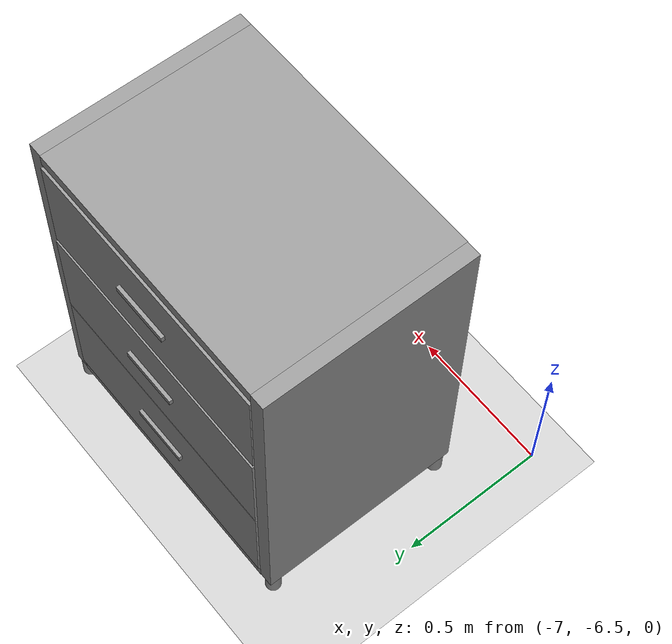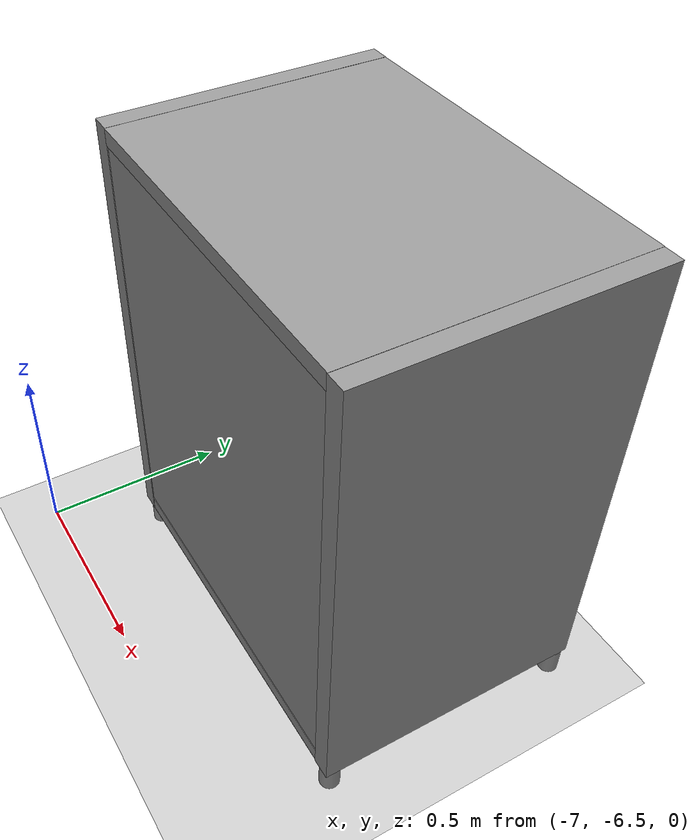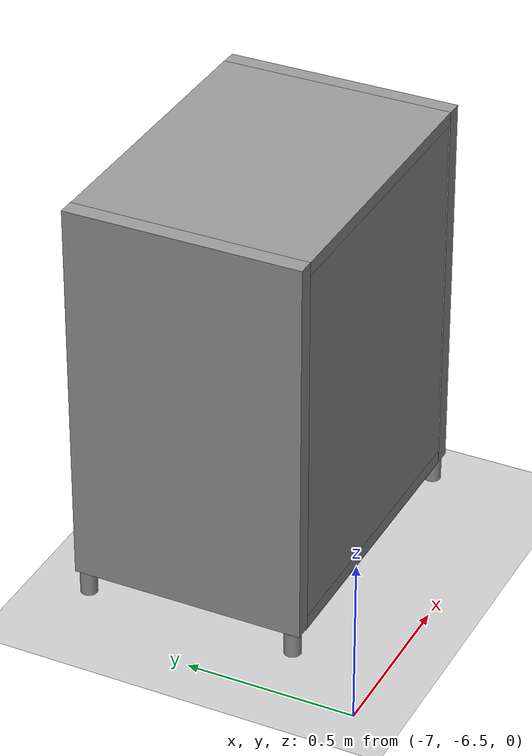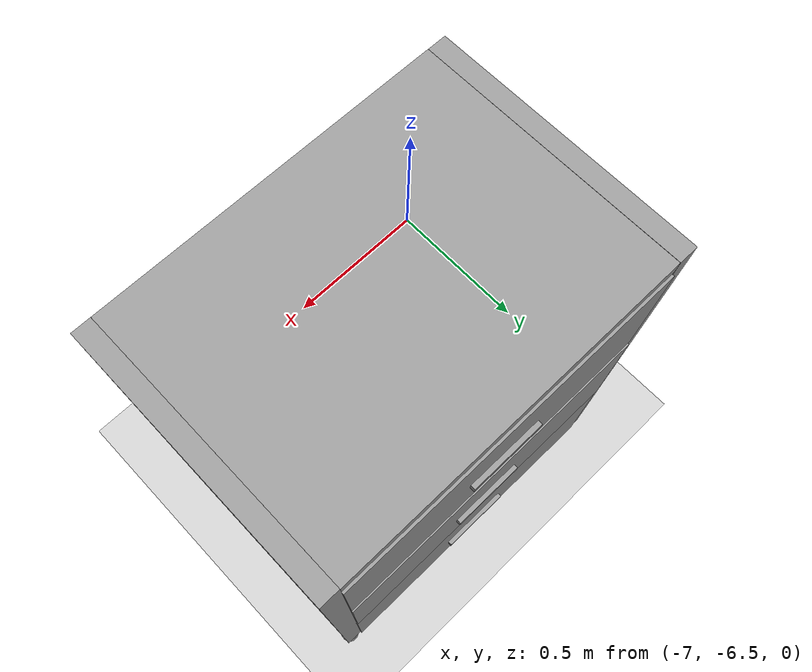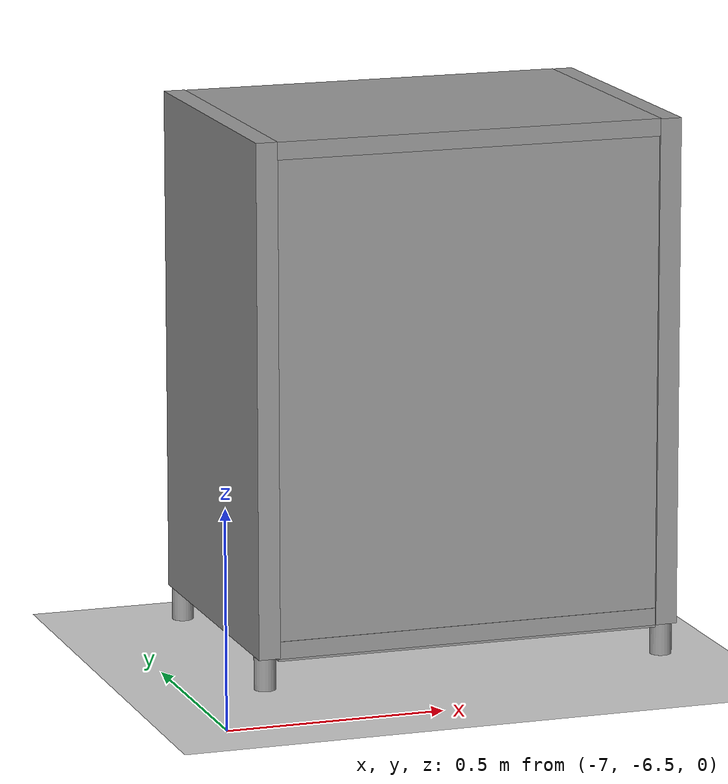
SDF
<sdf version="1.7">
 <world name="default">
  <model name="ground_plane">
   <static>1</static>
   <link name="link">
    <collision name="collision">
     <geometry><plane><normal>0 0 1</normal><size>100 100</size></plane></geometry>
     <surface>
      <contact><collide_bitmask>65535</collide_bitmask></contact>
      <friction><ode><mu>100</mu><mu2>50</mu2></ode></friction>
     </surface>
    </collision>
    <visual name="visual">
     <cast_shadows>0</cast_shadows>
     <geometry><plane><normal>0 0 1</normal><size>100 100</size></plane></geometry>
     <material>
      <script><uri>file://media/materials/scripts/gazebo.material</uri><name>Gazebo/Grey</name></script>
     </material>
    </visual>
   </link>
  </model>
  <model name="my_tall_drawer">
   <link name="link">
    <inertial>
     <mass>1</mass>
     <inertia>
      <ixx>0.166667</ixx>
      <ixy>0</ixy>
      <ixz>0</ixz>
      <iyy>0.166667</iyy>
      <iyz>0</iyz>
      <izz>0.166667</izz>
     </inertia>
    </inertial>
    <pose>-0.03613 -0.018536 -0.061909 0 -0 0</pose>
    <visual name="visual">
     <geometry><box><size>0.05 0.9 1.17</size></box></geometry>
     <material>
      <script><name>Gazebo/Grey</name><uri>file://media/materials/scripts/gazebo.material</uri></script>
      <shader type="pixel"><normal_map>__default__</normal_map></shader>
      <ambient>0.9 0.9 0.9 1</ambient>
      <diffuse>0.9 0.9 0.9 1</diffuse>
      <specular>0.01 0.01 0.01 1</specular>
      <emissive>0 0 0 1</emissive>
     </material>
     <pose>0 0 0.725 0 -0 0</pose>
    </visual>
    <collision name="collision">
     <pose>0 0 0.725 0 -0 0</pose>
     <geometry><box><size>0.05 0.9 1.17</size></box></geometry>
     <surface>
      <friction>
       <ode><mu>1</mu><mu2>1</mu2><fdir1>0 0 0</fdir1><slip1>0</slip1><slip2>0</slip2></ode>
       <torsional>
        <coefficient>1</coefficient>
        <patch_radius>0</patch_radius>
        <surface_radius>0</surface_radius>
        <use_patch_radius>1</use_patch_radius>
        <ode><slip>0</slip></ode>
       </torsional>
      </friction>
      <bounce><restitution_coefficient>0</restitution_coefficient><threshold>1e+06</threshold></bounce>
      <contact>
       <collide_without_contact>0</collide_without_contact>
       <collide_without_contact_bitmask>1</collide_without_contact_bitmask>
       <collide_bitmask>1</collide_bitmask>
       <ode>
        <soft_cfm>0</soft_cfm>
        <soft_erp>0.2</soft_erp>
        <kp>1e+13</kp>
        <kd>1</kd>
        <max_vel>0.01</max_vel>
        <min_depth>0</min_depth>
       </ode>
       <bullet>
        <split_impulse>1</split_impulse>
        <split_impulse_penetration_threshold>-0.01</split_impulse_penetration_threshold>
        <soft_cfm>0</soft_cfm>
        <soft_erp>0.2</soft_erp>
        <kp>1e+13</kp>
        <kd>1</kd>
       </bullet>
      </contact>
     </surface>
    </collision>
   </link>
   <link name="link_0">
    <inertial>
     <mass>1</mass>
     <inertia><ixx>0.145833</ixx><ixy>0</ixy><ixz>0</ixz><iyy>0.145833</iyy><iyz>0</iyz><izz>0.125</izz></inertia>
    </inertial>
    <pose>-0.037041 -0.491807 0.517038 0 -0 0</pose>
    <visual name="visual">
     <pose>0 0 -0.47 0 -0 0</pose>
     <geometry><cylinder><radius>0.025</radius><length>0.075</length></cylinder></geometry>
     <material>
      <lighting>1</lighting>
      <script><uri>file://media/materials/scripts/gazebo.material</uri><name>Gazebo/Grey</name></script>
      <shader type="pixel"><normal_map>__default__</normal_map></shader>
      <ambient>0.9 0.9 0.9 0</ambient>
      <diffuse>0.9 0.9 0.9 1</diffuse>
      <specular>0.01 0.01 0.01 1</specular>
      <emissive>0 0 0 1</emissive>
     </material>
    </visual>
    <collision name="collision">
     <pose>0 0 -0.47 0 -0 0</pose>
     <geometry><cylinder><radius>0.025</radius><length>0.075</length></cylinder></geometry>
     <surface>
      <friction>
       <ode><mu>1</mu><mu2>1</mu2><fdir1>0 0 0</fdir1><slip1>0</slip1><slip2>0</slip2></ode>
       <torsional>
        <coefficient>1</coefficient>
        <patch_radius>0</patch_radius>
        <surface_radius>0</surface_radius>
        <use_patch_radius>1</use_patch_radius>
        <ode><slip>0</slip></ode>
       </torsional>
      </friction>
      <bounce><restitution_coefficient>0</restitution_coefficient><threshold>1e+06</threshold></bounce>
      <contact>
       <collide_without_contact>0</collide_without_contact>
       <collide_without_contact_bitmask>1</collide_without_contact_bitmask>
       <collide_bitmask>1</collide_bitmask>
       <ode>
        <soft_cfm>0</soft_cfm>
        <soft_erp>0.2</soft_erp>
        <kp>1e+13</kp>
        <kd>1</kd>
        <max_vel>0.01</max_vel>
        <min_depth>0</min_depth>
       </ode>
       <bullet>
        <split_impulse>1</split_impulse>
        <split_impulse_penetration_threshold>-0.01</split_impulse_penetration_threshold>
        <soft_cfm>0</soft_cfm>
        <soft_erp>0.2</soft_erp>
        <kp>1e+13</kp>
        <kd>1</kd>
       </bullet>
      </contact>
     </surface>
    </collision>
   </link>
   <link name="link_0_clone">
    <inertial>
     <mass>1</mass>
     <inertia>
      <ixx>0.166667</ixx>
      <ixy>0</ixy>
      <ixz>0</ixz>
      <iyy>0.166667</iyy>
      <iyz>0</iyz>
      <izz>0.166667</izz>
     </inertia>
    </inertial>
    <pose>0.649567 -0.03449 1.03588 0 -0 0</pose>
    <gravity>0</gravity>
    <visual name="visual">
     <geometry><box><size>0.012 0.2 0.02</size></box></geometry>
     <material>
      <lighting>1</lighting>
      <script><uri>file://media/materials/scripts/gazebo.material</uri><name>Gazebo/Grey</name></script>
      <shader type="pixel"><normal_map>__default__</normal_map></shader>
      <ambient>0.2 0.2 0.2 0</ambient>
      <diffuse>0.2 0.2 0.2 1</diffuse>
      <specular>0.01 0.01 0.01 1</specular>
      <emissive>0 0 0 1</emissive>
     </material>
    </visual>
    <collision name="collision">
     <geometry><box><size>0.012 0.2 0.02</size></box></geometry>
     <surface>
      <friction>
       <ode><mu>1</mu><mu2>1</mu2><fdir1>0 0 0</fdir1><slip1>0</slip1><slip2>0</slip2></ode>
       <torsional>
        <coefficient>1</coefficient>
        <patch_radius>0</patch_radius>
        <surface_radius>0</surface_radius>
        <use_patch_radius>1</use_patch_radius>
        <ode><slip>0</slip></ode>
       </torsional>
      </friction>
      <bounce><restitution_coefficient>0</restitution_coefficient><threshold>1e+06</threshold></bounce>
      <contact>
       <collide_without_contact>0</collide_without_contact>
       <collide_without_contact_bitmask>1</collide_without_contact_bitmask>
       <collide_bitmask>1</collide_bitmask>
       <ode>
        <soft_cfm>0</soft_cfm>
        <soft_erp>0.2</soft_erp>
        <kp>1e+13</kp>
        <kd>1</kd>
        <max_vel>0.01</max_vel>
        <min_depth>0</min_depth>
       </ode>
       <bullet>
        <split_impulse>1</split_impulse>
        <split_impulse_penetration_threshold>-0.01</split_impulse_penetration_threshold>
        <soft_cfm>0</soft_cfm>
        <soft_erp>0.2</soft_erp>
        <kp>1e+13</kp>
        <kd>1</kd>
       </bullet>
      </contact>
     </surface>
    </collision>
   </link>
   <link name="link_0_clone_0">
    <inertial>
     <mass>1</mass>
     <inertia><ixx>0.145833</ixx><ixy>0</ixy><ixz>0</ixz><iyy>0.145833</iyy><iyz>0</iyz><izz>0.125</izz></inertia>
    </inertial>
    <pose>0.611334 -0.496528 0.517038 0 -0 0</pose>
    <visual name="visual">
     <pose>0 0 -0.47 0 -0 0</pose>
     <geometry><cylinder><radius>0.025</radius><length>0.075</length></cylinder></geometry>
     <material>
      <lighting>1</lighting>
      <script><uri>file://media/materials/scripts/gazebo.material</uri><name>Gazebo/Grey</name></script>
      <shader type="pixel"><normal_map>__default__</normal_map></shader>
      <ambient>0.9 0.9 0.9 0</ambient>
      <diffuse>0.9 0.9 0.9 1</diffuse>
      <specular>0.01 0.01 0.01 1</specular>
      <emissive>0 0 0 1</emissive>
     </material>
    </visual>
    <collision name="collision">
     <pose>0 0 -0.47 0 -0 0</pose>
     <geometry><cylinder><radius>0.025</radius><length>0.075</length></cylinder></geometry>
     <surface>
      <friction>
       <ode><mu>1</mu><mu2>1</mu2><fdir1>0 0 0</fdir1><slip1>0</slip1><slip2>0</slip2></ode>
       <torsional>
        <coefficient>1</coefficient>
        <patch_radius>0</patch_radius>
        <surface_radius>0</surface_radius>
        <use_patch_radius>1</use_patch_radius>
        <ode><slip>0</slip></ode>
       </torsional>
      </friction>
      <bounce><restitution_coefficient>0</restitution_coefficient><threshold>1e+06</threshold></bounce>
      <contact>
       <collide_without_contact>0</collide_without_contact>
       <collide_without_contact_bitmask>1</collide_without_contact_bitmask>
       <collide_bitmask>1</collide_bitmask>
       <ode>
        <soft_cfm>0</soft_cfm>
        <soft_erp>0.2</soft_erp>
        <kp>1e+13</kp>
        <kd>1</kd>
        <max_vel>0.01</max_vel>
        <min_depth>0</min_depth>
       </ode>
       <bullet>
        <split_impulse>1</split_impulse>
        <split_impulse_penetration_threshold>-0.01</split_impulse_penetration_threshold>
        <soft_cfm>0</soft_cfm>
        <soft_erp>0.2</soft_erp>
        <kp>1e+13</kp>
        <kd>1</kd>
       </bullet>
      </contact>
     </surface>
    </collision>
   </link>
   <link name="link_0_clone_1">
    <inertial>
     <mass>1</mass>
     <inertia><ixx>0.145833</ixx><ixy>0</ixy><ixz>0</ixz><iyy>0.145833</iyy><iyz>0</iyz><izz>0.125</izz></inertia>
    </inertial>
    <pose>-0.03182 0.454415 0.517038 0 -0 0</pose>
    <visual name="visual">
     <pose>0 0 -0.47 0 -0 0</pose>
     <geometry><cylinder><radius>0.025</radius><length>0.075</length></cylinder></geometry>
     <material>
      <lighting>1</lighting>
      <script><uri>file://media/materials/scripts/gazebo.material</uri><name>Gazebo/Grey</name></script>
      <shader type="pixel"><normal_map>__default__</normal_map></shader>
      <ambient>0.9 0.9 0.9 0</ambient>
      <diffuse>0.9 0.9 0.9 1</diffuse>
      <specular>0.01 0.01 0.01 1</specular>
      <emissive>0 0 0 1</emissive>
     </material>
    </visual>
    <collision name="collision">
     <pose>0 0 -0.47 0 -0 0</pose>
     <geometry><cylinder><radius>0.025</radius><length>0.075</length></cylinder></geometry>
     <surface>
      <friction>
       <ode><mu>1</mu><mu2>1</mu2><fdir1>0 0 0</fdir1><slip1>0</slip1><slip2>0</slip2></ode>
       <torsional>
        <coefficient>1</coefficient>
        <patch_radius>0</patch_radius>
        <surface_radius>0</surface_radius>
        <use_patch_radius>1</use_patch_radius>
        <ode><slip>0</slip></ode>
       </torsional>
      </friction>
      <bounce><restitution_coefficient>0</restitution_coefficient><threshold>1e+06</threshold></bounce>
      <contact>
       <collide_without_contact>0</collide_without_contact>
       <collide_without_contact_bitmask>1</collide_without_contact_bitmask>
       <collide_bitmask>1</collide_bitmask>
       <ode>
        <soft_cfm>0</soft_cfm>
        <soft_erp>0.2</soft_erp>
        <kp>1e+13</kp>
        <kd>1</kd>
        <max_vel>0.01</max_vel>
        <min_depth>0</min_depth>
       </ode>
       <bullet>
        <split_impulse>1</split_impulse>
        <split_impulse_penetration_threshold>-0.01</split_impulse_penetration_threshold>
        <soft_cfm>0</soft_cfm>
        <soft_erp>0.2</soft_erp>
        <kp>1e+13</kp>
        <kd>1</kd>
       </bullet>
      </contact>
     </surface>
    </collision>
   </link>
   <link name="link_0_clone_2">
    <inertial>
     <mass>1</mass>
     <inertia><ixx>0.145833</ixx><ixy>0</ixy><ixz>0</ixz><iyy>0.145833</iyy><iyz>0</iyz><izz>0.125</izz></inertia>
    </inertial>
    <pose>0.607914 0.452464 0.517038 0 -0 0</pose>
    <visual name="visual">
     <pose>0 0 -0.47 0 -0 0</pose>
     <geometry><cylinder><radius>0.025</radius><length>0.075</length></cylinder></geometry>
     <material>
      <lighting>1</lighting>
      <script><uri>file://media/materials/scripts/gazebo.material</uri><name>Gazebo/Grey</name></script>
      <shader type="pixel"><normal_map>__default__</normal_map></shader>
      <ambient>0.9 0.9 0.9 0</ambient>
      <diffuse>0.9 0.9 0.9 1</diffuse>
      <specular>0.01 0.01 0.01 1</specular>
      <emissive>0 0 0 1</emissive>
     </material>
    </visual>
    <collision name="collision">
     <pose>0 0 -0.47 0 -0 0</pose>
     <geometry><cylinder><radius>0.025</radius><length>0.075</length></cylinder></geometry>
     <surface>
      <friction>
       <ode><mu>1</mu><mu2>1</mu2><fdir1>0 0 0</fdir1><slip1>0</slip1><slip2>0</slip2></ode>
       <torsional>
        <coefficient>1</coefficient>
        <patch_radius>0</patch_radius>
        <surface_radius>0</surface_radius>
        <use_patch_radius>1</use_patch_radius>
        <ode><slip>0</slip></ode>
       </torsional>
      </friction>
      <bounce><restitution_coefficient>0</restitution_coefficient><threshold>1e+06</threshold></bounce>
      <contact>
       <collide_without_contact>0</collide_without_contact>
       <collide_without_contact_bitmask>1</collide_without_contact_bitmask>
       <collide_bitmask>1</collide_bitmask>
       <ode>
        <soft_cfm>0</soft_cfm>
        <soft_erp>0.2</soft_erp>
        <kp>1e+13</kp>
        <kd>1</kd>
        <max_vel>0.01</max_vel>
        <min_depth>0</min_depth>
       </ode>
       <bullet>
        <split_impulse>1</split_impulse>
        <split_impulse_penetration_threshold>-0.01</split_impulse_penetration_threshold>
        <soft_cfm>0</soft_cfm>
        <soft_erp>0.2</soft_erp>
        <kp>1e+13</kp>
        <kd>1</kd>
       </bullet>
      </contact>
     </surface>
    </collision>
   </link>
   <link name="link_0_clone_clone">
    <inertial>
     <mass>1</mass>
     <inertia>
      <ixx>0.166667</ixx>
      <ixy>0</ixy>
      <ixz>0</ixz>
      <iyy>0.166667</iyy>
      <iyz>0</iyz>
      <izz>0.166667</izz>
     </inertia>
    </inertial>
    <pose>0.648574 -0.032127 0.308738 0 -0 0</pose>
    <gravity>0</gravity>
    <visual name="visual">
     <geometry><box><size>0.012 0.2 0.02</size></box></geometry>
     <material>
      <lighting>1</lighting>
      <script><uri>file://media/materials/scripts/gazebo.material</uri><name>Gazebo/Grey</name></script>
      <shader type="pixel"><normal_map>__default__</normal_map></shader>
      <ambient>0.2 0.2 0.2 0</ambient>
      <diffuse>0.2 0.2 0.2 1</diffuse>
      <specular>0.01 0.01 0.01 1</specular>
      <emissive>0 0 0 1</emissive>
     </material>
    </visual>
    <collision name="collision">
     <geometry><box><size>0.012 0.2 0.02</size></box></geometry>
     <surface>
      <friction>
       <ode><mu>1</mu><mu2>1</mu2><fdir1>0 0 0</fdir1><slip1>0</slip1><slip2>0</slip2></ode>
       <torsional>
        <coefficient>1</coefficient>
        <patch_radius>0</patch_radius>
        <surface_radius>0</surface_radius>
        <use_patch_radius>1</use_patch_radius>
        <ode><slip>0</slip></ode>
       </torsional>
      </friction>
      <bounce><restitution_coefficient>0</restitution_coefficient><threshold>1e+06</threshold></bounce>
      <contact>
       <collide_without_contact>0</collide_without_contact>
       <collide_without_contact_bitmask>1</collide_without_contact_bitmask>
       <collide_bitmask>1</collide_bitmask>
       <ode>
        <soft_cfm>0</soft_cfm>
        <soft_erp>0.2</soft_erp>
        <kp>1e+13</kp>
        <kd>1</kd>
        <max_vel>0.01</max_vel>
        <min_depth>0</min_depth>
       </ode>
       <bullet>
        <split_impulse>1</split_impulse>
        <split_impulse_penetration_threshold>-0.01</split_impulse_penetration_threshold>
        <soft_cfm>0</soft_cfm>
        <soft_erp>0.2</soft_erp>
        <kp>1e+13</kp>
        <kd>1</kd>
       </bullet>
      </contact>
     </surface>
    </collision>
   </link>
   <link name="link_0_clone_clone_0">
    <inertial>
     <mass>1</mass>
     <inertia>
      <ixx>0.166667</ixx>
      <ixy>0</ixy>
      <ixz>0</ixz>
      <iyy>0.166667</iyy>
      <iyz>0</iyz>
      <izz>0.166667</izz>
     </inertia>
    </inertial>
    <pose>0.650881 -0.037424 0.670231 0 -0 0</pose>
    <gravity>0</gravity>
    <visual name="visual">
     <geometry><box><size>0.012 0.2 0.02</size></box></geometry>
     <material>
      <lighting>1</lighting>
      <script><uri>file://media/materials/scripts/gazebo.material</uri><name>Gazebo/Grey</name></script>
      <shader type="pixel"><normal_map>__default__</normal_map></shader>
      <ambient>0.2 0.2 0.2 0</ambient>
      <diffuse>0.2 0.2 0.2 1</diffuse>
      <specular>0.01 0.01 0.01 1</specular>
      <emissive>0 0 0 1</emissive>
     </material>
    </visual>
    <collision name="collision">
     <geometry><box><size>0.012 0.2 0.02</size></box></geometry>
     <surface>
      <friction>
       <ode><mu>1</mu><mu2>1</mu2><fdir1>0 0 0</fdir1><slip1>0</slip1><slip2>0</slip2></ode>
       <torsional>
        <coefficient>1</coefficient>
        <patch_radius>0</patch_radius>
        <surface_radius>0</surface_radius>
        <use_patch_radius>1</use_patch_radius>
        <ode><slip>0</slip></ode>
       </torsional>
      </friction>
      <bounce><restitution_coefficient>0</restitution_coefficient><threshold>1e+06</threshold></bounce>
      <contact>
       <collide_without_contact>0</collide_without_contact>
       <collide_without_contact_bitmask>1</collide_without_contact_bitmask>
       <collide_bitmask>1</collide_bitmask>
       <ode>
        <soft_cfm>0</soft_cfm>
        <soft_erp>0.2</soft_erp>
        <kp>1e+13</kp>
        <kd>1</kd>
        <max_vel>0.01</max_vel>
        <min_depth>0</min_depth>
       </ode>
       <bullet>
        <split_impulse>1</split_impulse>
        <split_impulse_penetration_threshold>-0.01</split_impulse_penetration_threshold>
        <soft_cfm>0</soft_cfm>
        <soft_erp>0.2</soft_erp>
        <kp>1e+13</kp>
        <kd>1</kd>
       </bullet>
      </contact>
     </surface>
    </collision>
   </link>
   <link name="link_clone">
    <inertial>
     <mass>1</mass>
     <inertia>
      <ixx>0.166667</ixx>
      <ixy>0</ixy>
      <ixz>0</ixz>
      <iyy>0.166667</iyy>
      <iyz>0</iyz>
      <izz>0.166667</izz>
     </inertia>
    </inertial>
    <pose>0.28891 -0.018651 -1.19613 1.1e-05 -0.001065 2e-06</pose>
    <visual name="visual">
     <geometry><box><size>0.7 0.9 0.04</size></box></geometry>
     <material>
      <script><name>Gazebo/Grey</name><uri>file://media/materials/scripts/gazebo.material</uri></script>
      <shader type="pixel"><normal_map>__default__</normal_map></shader>
      <ambient>0.9 0.9 0.9 1</ambient>
      <diffuse>0.9 0.9 0.9 1</diffuse>
      <specular>0.01 0.01 0.01 1</specular>
      <emissive>0 0 0 1</emissive>
     </material>
     <pose>0 0 1.3 0 -0 0</pose>
    </visual>
    <collision name="collision">
     <pose>0 0 1.3 0 -0 0</pose>
     <geometry><box><size>0.7 0.9 0.04</size></box></geometry>
     <surface>
      <friction>
       <ode><mu>1</mu><mu2>1</mu2><fdir1>0 0 0</fdir1><slip1>0</slip1><slip2>0</slip2></ode>
       <torsional>
        <coefficient>1</coefficient>
        <patch_radius>0</patch_radius>
        <surface_radius>0</surface_radius>
        <use_patch_radius>1</use_patch_radius>
        <ode><slip>0</slip></ode>
       </torsional>
      </friction>
      <bounce><restitution_coefficient>0</restitution_coefficient><threshold>1e+06</threshold></bounce>
      <contact>
       <collide_without_contact>0</collide_without_contact>
       <collide_without_contact_bitmask>1</collide_without_contact_bitmask>
       <collide_bitmask>1</collide_bitmask>
       <ode>
        <soft_cfm>0</soft_cfm>
        <soft_erp>0.2</soft_erp>
        <kp>1e+13</kp>
        <kd>1</kd>
        <max_vel>0.01</max_vel>
        <min_depth>0</min_depth>
       </ode>
       <bullet>
        <split_impulse>1</split_impulse>
        <split_impulse_penetration_threshold>-0.01</split_impulse_penetration_threshold>
        <soft_cfm>0</soft_cfm>
        <soft_erp>0.2</soft_erp>
        <kp>1e+13</kp>
        <kd>1</kd>
       </bullet>
      </contact>
     </surface>
    </collision>
   </link>
   <link name="link_clone_0">
    <inertial>
     <mass>1</mass>
     <inertia>
      <ixx>0.166667</ixx>
      <ixy>0</ixy>
      <ixz>0</ixz>
      <iyy>0.166667</iyy>
      <iyz>0</iyz>
      <izz>0.166667</izz>
     </inertia>
    </inertial>
    <pose>0.285628 -0.49449 -0.040786 0 -0 0</pose>
    <visual name="visual">
     <geometry><box><size>0.05 0.7 1.17</size></box></geometry>
     <material>
      <script><name>Gazebo/Grey</name><uri>file://media/materials/scripts/gazebo.material</uri></script>
      <shader type="pixel"><normal_map>__default__</normal_map></shader>
      <ambient>0.9 0.9 0.9 1</ambient>
      <diffuse>0.9 0.9 0.9 1</diffuse>
      <specular>0.01 0.01 0.01 1</specular>
      <emissive>0 0 0 1</emissive>
     </material>
     <pose>0 0 0.71 0 -0 1.5707</pose>
    </visual>
    <collision name="collision">
     <pose>0 0 0.71 0 -0 1.5707</pose>
     <geometry><box><size>0.05 0.7 1.17</size></box></geometry>
     <surface>
      <friction>
       <ode><mu>1</mu><mu2>1</mu2><fdir1>0 0 0</fdir1><slip1>0</slip1><slip2>0</slip2></ode>
       <torsional>
        <coefficient>1</coefficient>
        <patch_radius>0</patch_radius>
        <surface_radius>0</surface_radius>
        <use_patch_radius>1</use_patch_radius>
        <ode><slip>0</slip></ode>
       </torsional>
      </friction>
      <bounce><restitution_coefficient>0</restitution_coefficient><threshold>1e+06</threshold></bounce>
      <contact>
       <collide_without_contact>0</collide_without_contact>
       <collide_without_contact_bitmask>1</collide_without_contact_bitmask>
       <collide_bitmask>1</collide_bitmask>
       <ode>
        <soft_cfm>0</soft_cfm>
        <soft_erp>0.2</soft_erp>
        <kp>1e+13</kp>
        <kd>1</kd>
        <max_vel>0.01</max_vel>
        <min_depth>0</min_depth>
       </ode>
       <bullet>
        <split_impulse>1</split_impulse>
        <split_impulse_penetration_threshold>-0.01</split_impulse_penetration_threshold>
        <soft_cfm>0</soft_cfm>
        <soft_erp>0.2</soft_erp>
        <kp>1e+13</kp>
        <kd>1</kd>
       </bullet>
      </contact>
     </surface>
    </collision>
   </link>
   <link name="link_clone_0_clone">
    <inertial>
     <mass>1</mass>
     <inertia>
      <ixx>0.166667</ixx>
      <ixy>0</ixy>
      <ixz>0</ixz>
      <iyy>0.166667</iyy>
      <iyz>0</iyz>
      <izz>0.166667</izz>
     </inertia>
    </inertial>
    <pose>0.286617 0.453061 -0.03976 0 -0 0</pose>
    <visual name="visual">
     <geometry><box><size>0.05 0.7 1.17</size></box></geometry>
     <material>
      <script><name>Gazebo/Grey</name><uri>file://media/materials/scripts/gazebo.material</uri></script>
      <shader type="pixel"><normal_map>__default__</normal_map></shader>
      <ambient>0.9 0.9 0.9 1</ambient>
      <diffuse>0.9 0.9 0.9 1</diffuse>
      <specular>0.01 0.01 0.01 1</specular>
      <emissive>0 0 0 1</emissive>
     </material>
     <pose>0 0 0.71 0 -0 1.5707</pose>
    </visual>
    <collision name="collision">
     <pose>0 0 0.71 0 -0 1.5707</pose>
     <geometry><box><size>0.05 0.7 1.17</size></box></geometry>
     <surface>
      <friction>
       <ode><mu>1</mu><mu2>1</mu2><fdir1>0 0 0</fdir1><slip1>0</slip1><slip2>0</slip2></ode>
       <torsional>
        <coefficient>1</coefficient>
        <patch_radius>0</patch_radius>
        <surface_radius>0</surface_radius>
        <use_patch_radius>1</use_patch_radius>
        <ode><slip>0</slip></ode>
       </torsional>
      </friction>
      <bounce><restitution_coefficient>0</restitution_coefficient><threshold>1e+06</threshold></bounce>
      <contact>
       <collide_without_contact>0</collide_without_contact>
       <collide_without_contact_bitmask>1</collide_without_contact_bitmask>
       <collide_bitmask>1</collide_bitmask>
       <ode>
        <soft_cfm>0</soft_cfm>
        <soft_erp>0.2</soft_erp>
        <kp>1e+13</kp>
        <kd>1</kd>
        <max_vel>0.01</max_vel>
        <min_depth>0</min_depth>
       </ode>
       <bullet>
        <split_impulse>1</split_impulse>
        <split_impulse_penetration_threshold>-0.01</split_impulse_penetration_threshold>
        <soft_cfm>0</soft_cfm>
        <soft_erp>0.2</soft_erp>
        <kp>1e+13</kp>
        <kd>1</kd>
       </bullet>
      </contact>
     </surface>
    </collision>
   </link>
   <link name="link_clone_1_clone">
    <inertial>
     <mass>1</mass>
     <inertia>
      <ixx>0.166667</ixx>
      <ixy>0</ixy>
      <ixz>0</ixz>
      <iyy>0.166667</iyy>
      <iyz>0</iyz>
      <izz>0.166667</izz>
     </inertia>
    </inertial>
    <pose>0.617981 -0.022509 -0.070781 0 -0 0</pose>
    <visual name="visual">
     <geometry><box><size>0.05 0.9 0.35</size></box></geometry>
     <material>
      <script><name>Gazebo/Grey</name><uri>file://media/materials/scripts/gazebo.material</uri></script>
      <shader type="pixel"><normal_map>__default__</normal_map></shader>
      <ambient>0.9 0.9 0.9 1</ambient>
      <diffuse>0.9 0.9 0.9 1</diffuse>
      <specular>0.01 0.01 0.01 1</specular>
      <emissive>0 0 0 1</emissive>
     </material>
     <pose>0 0 0.38 0 -0 0</pose>
    </visual>
    <collision name="collision">
     <pose>0 0 0.38 0 -0 0</pose>
     <geometry><box><size>0.05 0.9 0.35</size></box></geometry>
     <surface>
      <friction>
       <ode><mu>1</mu><mu2>1</mu2><fdir1>0 0 0</fdir1><slip1>0</slip1><slip2>0</slip2></ode>
       <torsional>
        <coefficient>1</coefficient>
        <patch_radius>0</patch_radius>
        <surface_radius>0</surface_radius>
        <use_patch_radius>1</use_patch_radius>
        <ode><slip>0</slip></ode>
       </torsional>
      </friction>
      <bounce><restitution_coefficient>0</restitution_coefficient><threshold>1e+06</threshold></bounce>
      <contact>
       <collide_without_contact>0</collide_without_contact>
       <collide_without_contact_bitmask>1</collide_without_contact_bitmask>
       <collide_bitmask>1</collide_bitmask>
       <ode>
        <soft_cfm>0</soft_cfm>
        <soft_erp>0.2</soft_erp>
        <kp>1e+13</kp>
        <kd>1</kd>
        <max_vel>0.01</max_vel>
        <min_depth>0</min_depth>
       </ode>
       <bullet>
        <split_impulse>1</split_impulse>
        <split_impulse_penetration_threshold>-0.01</split_impulse_penetration_threshold>
        <soft_cfm>0</soft_cfm>
        <soft_erp>0.2</soft_erp>
        <kp>1e+13</kp>
        <kd>1</kd>
       </bullet>
      </contact>
     </surface>
    </collision>
   </link>
   <link name="link_clone_1_clone_clone">
    <inertial>
     <mass>1</mass>
     <inertia>
      <ixx>0.166667</ixx>
      <ixy>0</ixy>
      <ixz>0</ixz>
      <iyy>0.166667</iyy>
      <iyz>0</iyz>
      <izz>0.166667</izz>
     </inertia>
    </inertial>
    <pose>0.619149 -0.021678 0.28766 0 -0 0</pose>
    <visual name="visual">
     <geometry><box><size>0.05 0.9 0.35</size></box></geometry>
     <material>
      <script><name>Gazebo/Grey</name><uri>file://media/materials/scripts/gazebo.material</uri></script>
      <shader type="pixel"><normal_map>__default__</normal_map></shader>
      <ambient>0.9 0.9 0.9 1</ambient>
      <diffuse>0.9 0.9 0.9 1</diffuse>
      <specular>0.01 0.01 0.01 1</specular>
      <emissive>0 0 0 1</emissive>
     </material>
     <pose>0 0 0.38 0 -0 0</pose>
    </visual>
    <collision name="collision">
     <pose>0 0 0.38 0 -0 0</pose>
     <geometry><box><size>0.05 0.9 0.35</size></box></geometry>
     <surface>
      <friction>
       <ode><mu>1</mu><mu2>1</mu2><fdir1>0 0 0</fdir1><slip1>0</slip1><slip2>0</slip2></ode>
       <torsional>
        <coefficient>1</coefficient>
        <patch_radius>0</patch_radius>
        <surface_radius>0</surface_radius>
        <use_patch_radius>1</use_patch_radius>
        <ode><slip>0</slip></ode>
       </torsional>
      </friction>
      <bounce><restitution_coefficient>0</restitution_coefficient><threshold>1e+06</threshold></bounce>
      <contact>
       <collide_without_contact>0</collide_without_contact>
       <collide_without_contact_bitmask>1</collide_without_contact_bitmask>
       <collide_bitmask>1</collide_bitmask>
       <ode>
        <soft_cfm>0</soft_cfm>
        <soft_erp>0.2</soft_erp>
        <kp>1e+13</kp>
        <kd>1</kd>
        <max_vel>0.01</max_vel>
        <min_depth>0</min_depth>
       </ode>
       <bullet>
        <split_impulse>1</split_impulse>
        <split_impulse_penetration_threshold>-0.01</split_impulse_penetration_threshold>
        <soft_cfm>0</soft_cfm>
        <soft_erp>0.2</soft_erp>
        <kp>1e+13</kp>
        <kd>1</kd>
       </bullet>
      </contact>
     </surface>
    </collision>
   </link>
   <link name="link_clone_1_clone_clone_clone">
    <inertial>
     <mass>1</mass>
     <inertia>
      <ixx>0.166667</ixx>
      <ixy>0</ixy>
      <ixz>0</ixz>
      <iyy>0.166667</iyy>
      <iyz>0</iyz>
      <izz>0.166667</izz>
     </inertia>
    </inertial>
    <pose>0.616281 -0.021483 0.647925 0 -0 0</pose>
    <visual name="visual">
     <geometry><box><size>0.05 0.9 0.35</size></box></geometry>
     <material>
      <script><name>Gazebo/Grey</name><uri>file://media/materials/scripts/gazebo.material</uri></script>
      <shader type="pixel"><normal_map>__default__</normal_map></shader>
      <ambient>0.9 0.9 0.9 1</ambient>
      <diffuse>0.9 0.9 0.9 1</diffuse>
      <specular>0.01 0.01 0.01 1</specular>
      <emissive>0 0 0 1</emissive>
     </material>
     <pose>0 0 0.38 0 -0 0</pose>
    </visual>
    <collision name="collision">
     <pose>0 0 0.38 0 -0 0</pose>
     <geometry><box><size>0.05 0.9 0.35</size></box></geometry>
     <surface>
      <friction>
       <ode><mu>1</mu><mu2>1</mu2><fdir1>0 0 0</fdir1><slip1>0</slip1><slip2>0</slip2></ode>
       <torsional>
        <coefficient>1</coefficient>
        <patch_radius>0</patch_radius>
        <surface_radius>0</surface_radius>
        <use_patch_radius>1</use_patch_radius>
        <ode><slip>0</slip></ode>
       </torsional>
      </friction>
      <bounce><restitution_coefficient>0</restitution_coefficient><threshold>1e+06</threshold></bounce>
      <contact>
       <collide_without_contact>0</collide_without_contact>
       <collide_without_contact_bitmask>1</collide_without_contact_bitmask>
       <collide_bitmask>1</collide_bitmask>
       <ode>
        <soft_cfm>0</soft_cfm>
        <soft_erp>0.2</soft_erp>
        <kp>1e+13</kp>
        <kd>1</kd>
        <max_vel>0.01</max_vel>
        <min_depth>0</min_depth>
       </ode>
       <bullet>
        <split_impulse>1</split_impulse>
        <split_impulse_penetration_threshold>-0.01</split_impulse_penetration_threshold>
        <soft_cfm>0</soft_cfm>
        <soft_erp>0.2</soft_erp>
        <kp>1e+13</kp>
        <kd>1</kd>
       </bullet>
      </contact>
     </surface>
    </collision>
   </link>
   <link name="link_clone_clone_0">
    <inertial>
     <mass>1</mass>
     <inertia>
      <ixx>0.166667</ixx>
      <ixy>0</ixy>
      <ixz>0</ixz>
      <iyy>0.166667</iyy>
      <iyz>0</iyz>
      <izz>0.166667</izz>
     </inertia>
    </inertial>
    <pose>0.286116 -0.021247 1.16784 2.2e-05 0.000604 0.000114</pose>
    <visual name="visual">
     <geometry><box><size>0.7 0.9 0.04</size></box></geometry>
     <material>
      <script><name>Gazebo/Grey</name><uri>file://media/materials/scripts/gazebo.material</uri></script>
      <shader type="pixel"><normal_map>__default__</normal_map></shader>
      <ambient>0.9 0.9 0.9 1</ambient>
      <diffuse>0.9 0.9 0.9 1</diffuse>
      <specular>0.01 0.01 0.01 1</specular>
      <emissive>0 0 0 1</emissive>
     </material>
     <pose>0 0 0.067 0 -0 0</pose>
    </visual>
    <collision name="collision">
     <pose>0 0 0.067 0 -0 0</pose>
     <geometry><box><size>0.7 0.9 0.04</size></box></geometry>
     <surface>
      <friction>
       <ode><mu>1</mu><mu2>1</mu2><fdir1>0 0 0</fdir1><slip1>0</slip1><slip2>0</slip2></ode>
       <torsional>
        <coefficient>1</coefficient>
        <patch_radius>0</patch_radius>
        <surface_radius>0</surface_radius>
        <use_patch_radius>1</use_patch_radius>
        <ode><slip>0</slip></ode>
       </torsional>
      </friction>
      <bounce><restitution_coefficient>0</restitution_coefficient><threshold>1e+06</threshold></bounce>
      <contact>
       <collide_without_contact>0</collide_without_contact>
       <collide_without_contact_bitmask>1</collide_without_contact_bitmask>
       <collide_bitmask>1</collide_bitmask>
       <ode>
        <soft_cfm>0</soft_cfm>
        <soft_erp>0.2</soft_erp>
        <kp>1e+13</kp>
        <kd>1</kd>
        <max_vel>0.01</max_vel>
        <min_depth>0</min_depth>
       </ode>
       <bullet>
        <split_impulse>1</split_impulse>
        <split_impulse_penetration_threshold>-0.01</split_impulse_penetration_threshold>
        <soft_cfm>0</soft_cfm>
        <soft_erp>0.2</soft_erp>
        <kp>1e+13</kp>
        <kd>1</kd>
       </bullet>
      </contact>
     </surface>
    </collision>
   </link>
   <static>1</static>
   <pose>-6.37482 -6.20415 0 0 -0 1.5708</pose>
  </model>
 </world>
</sdf>
